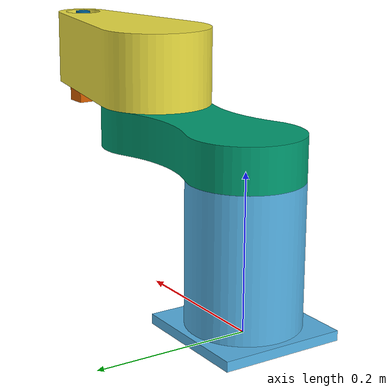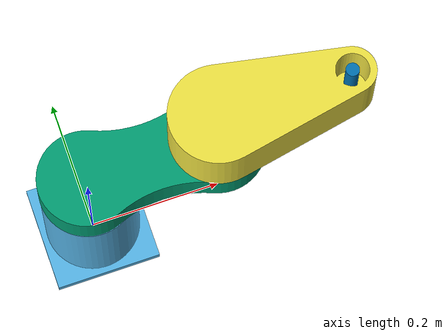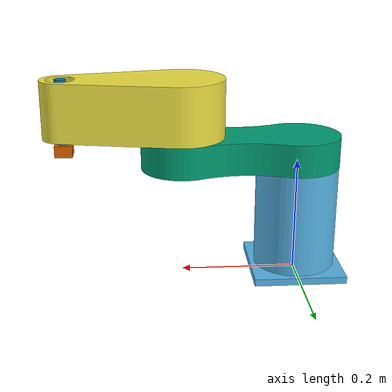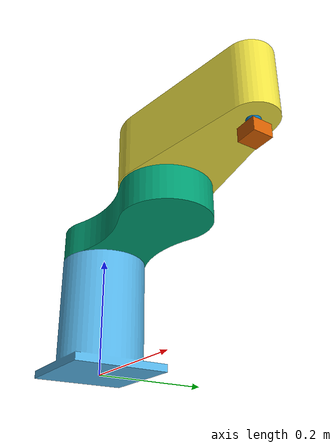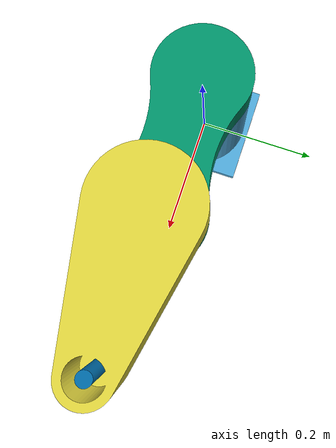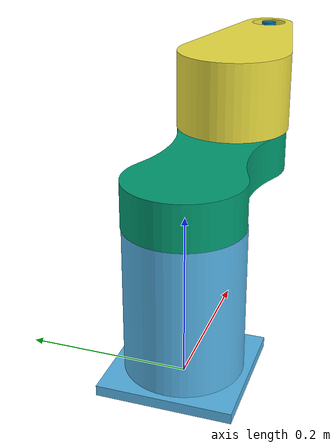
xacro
<?xml version="1.0"?>
<robot name="scara" xmlns:xacro="scara_robot">

    <!-- Robot robot_description -->
    <link name="dummy"/>

    <joint name="dummy_joint" type="fixed">
        <parent link="dummy"/>
        <child link="base_link"/>
    </joint>

<!-- BASE LINK -->

    <link name="base_link">
    <visual>

        <origin xyz="-0.08 -0.08 0" rpy="0.0 0.0 0.0"/>
        <geometry>
            <mesh filename="package://scara_robot/meshes/base_link.stl" scale="0.001 0.001 0.001"/>
        </geometry>
    </visual>
    <inertial>
        <mass value="25.37"/>
        <inertia ixx="0.12" ixy="0" ixz="0" iyy="0.12" iyz="0" izz="0.07"/>
    </inertial>
    <collision>
        <origin xyz="-0.08 -0.08 0" rpy="0.0 0.0 0.0"/>
        <geometry>
            <mesh filename="package://scara_robot/meshes/base_link.stl" scale="0.001 0.001 0.001"/>
        </geometry>
    </collision>
    </link>

<!-- Joint 1- Base link and link 1 -->

    <joint name="base_link_link_01" type="revolute">
        <origin xyz="0 0 0.1925" rpy="0.0 0.0 0.0"/>
        <parent link="base_link"/>
        <child link="link_01"/>
        <axis xyz="0 0 1"/>
        <limit lower="-3.14" upper="3.14" effort="1000" velocity="0.5"/>
    </joint>

    <transmission name="trans_base_link_link_01">
        <type>transmission_interface/SimpleTransmission</type>
        <joint name="base_link_link_01">
            <hardwareInterface>hardware_interface/EffortJointInterface</hardwareInterface>
        </joint>
        <actuator name="motor_01">
            <hardwareInterface>hardware_interface/EffortJointInterface</hardwareInterface>
            <mechanicalReduction>1</mechanicalReduction>
        </actuator>
    </transmission>

<!-- Link 1 -->

    <link name="link_01">
    <visual>
        <origin xyz="-0.038 -0.0715 0.02775" rpy="0.0 0.0 0.0"/>
        <geometry>
            <mesh filename="package://scara_robot/meshes/link_1.stl" scale="0.001 0.001 0.001"/>
        </geometry>
    </visual>
    <inertial>
        <mass value="5.98"/>
        <inertia ixx="0.01" ixy="0" ixz="0" iyy="0.06" iyz="0" izz="0.06"/>
    </inertial>
    <collision>
        <origin xyz="-0.038 -0.0715 0.02775" rpy="0.0 0.0 0.0"/>
        <geometry>
            <mesh filename="package://scara_robot/meshes/link_1.stl" scale="0.001 0.001 0.001"/>
        </geometry>
    </collision>
    </link>
<!-- Joint- Link1 and Link 2 -->

    <joint name="link_01_link_02" type="revolute">
        <origin xyz="0.200 0.0 0.0555" rpy="0.0 0.0 0.0"/>
        <parent link="link_01"/>
        <child link="link_02"/>
        <axis xyz="0 0 1"/>
        <limit lower="-3.14" upper="3.14" effort="1000" velocity="0.5"/>
    </joint>
    <transmission name="trans_link_01_link_02">
        <type>transmission_interface/SimpleTransmission</type>
        <joint name="link_01_link_02">
            <hardwareInterface>hardware_interface/EffortJointInterface</hardwareInterface>
        </joint>
        <actuator name="motor_02">
            <hardwareInterface>hardware_interface/EffortJointInterface</hardwareInterface>
            <mechanicalReduction>1</mechanicalReduction>
        </actuator>
    </transmission>

<!-- Link 2 -->

    <link name="link_02">
    <visual>
        <origin xyz="-0.073 -0.073 0" rpy="0.0 0.0 0.0"/>
        <geometry>
            <mesh filename="package://scara_robot/meshes/link_2.stl" scale="0.001 0.001 0.001"/>
        </geometry>
    </visual>
    <inertial>
        <mass value="8.29"/>
        <inertia ixx="0.02" ixy="0" ixz="0" iyy="0.05" iyz="0" izz="0.06"/>
    </inertial>
    <collision>
        <origin xyz="-0.073 -0.073 0" rpy="0.0 0.0 0.0"/>
        <geometry>
            <mesh filename="package://scara_robot/meshes/link_2.stl" scale="0.001 0.001 0.001"/>
        </geometry>
    </collision>
    </link>

<!-- Joint- Link 2 and Link 3 -->

    <joint name="link_02_link_03" type="prismatic">
        <origin xyz="0.200 0.0 0" rpy="0.0 0.0 0.0"/>
        <parent link="link_02"/>
        <child link="link_03"/>
        <axis xyz="0 0 1"/>
        <limit lower="-0.040" upper="0.040" effort="1000" velocity="0.5"/>
    </joint>

    <transmission name="trans_link_02_link_03">
        <type>transmission_interface/SimpleTransmission</type>
        <joint name="link_02_link_03">
            <hardwareInterface>hardware_interface/EffortJointInterface</hardwareInterface>
        </joint>
        <actuator name="motor_03">
            <hardwareInterface>hardware_interface/EffortJointInterface</hardwareInterface>
            <mechanicalReduction>1</mechanicalReduction>
        </actuator>
    </transmission>

<!-- Link 3 -->

    <link name="link_03">
    <visual>
        <origin xyz="-0.010 -0.010 0" rpy="0.0 0.0 0.0"/>
        <geometry>
            <mesh filename="package://scara_robot/meshes/link_3.stl" scale="0.001 0.001 0.001"/>
        </geometry>
    </visual>
    <inertial>
        <mass value="0.10179"/>
        <inertia ixx="0.0001246898" ixy="0" ixz="0" iyy="0.0001246898" iyz="0" izz="0.00000508938"/>
    </inertial>
    <collision>
        <origin xyz="-0.010 -0.010 0" rpy="0.0 0.0 0.0"/>
        <geometry>
            <mesh filename="package://scara_robot/meshes/link_3.stl" scale="0.001 0.001 0.001"/>
        </geometry>
    </collision>
    </link>

<!-- Joint Link 3 and Link 4 -->

    <joint name="link_03_link_04" type="revolute">
        <origin xyz="0 0 -0.030" rpy="0.0 0.0 0.0"/>
        <parent link="link_03"/>
        <child link="link_04"/>
        <axis xyz="0 0 1"/>
        <limit lower="-3.14" upper="3.14" effort="1000" velocity="0.5"/>
    </joint>

    <transmission name="trans_link_03_link_04">
        <type>transmission_interface/SimpleTransmission</type>
        <joint name="link_03_link_04">
            <hardwareInterface>hardware_interface/EffortJointInterface</hardwareInterface>
        </joint>
        <actuator name="motor_04">
            <hardwareInterface>hardware_interface/EffortJointInterface</hardwareInterface>
            <mechanicalReduction>1</mechanicalReduction>
        </actuator>
    </transmission>

<!-- Link 4 -->

    <link name="link_04">
    <visual>
        <origin xyz="-0.015 -0.015 0" rpy="0.0 0.0 0.0"/>
        <geometry>
            <mesh filename="package://scara_robot/meshes/link_4.stl" scale="0.001 0.001 0.001"/>
        </geometry>
    </visual>
     <inertial>
        <mass value="0.04012"/>
        <inertia ixx="0.00000472536" ixy="0" ixz="0" iyy="0.00000472536" iyz="0" izz="0.00000686588"/>
    </inertial>
    <collision>
        <origin xyz="-0.015 -0.015 0" rpy="0.0 0.0 0.0"/>
        <geometry>
            <mesh filename="package://scara_robot/meshes/link_4.stl" scale="0.001 0.001 0.001"/>
        </geometry>
    </collision>
    </link>

    <gazebo>
    <plugin name="gazebo_ros_control" filename="libgazebo_ros_control.so">
    </plugin>
  </gazebo>
</robot>
